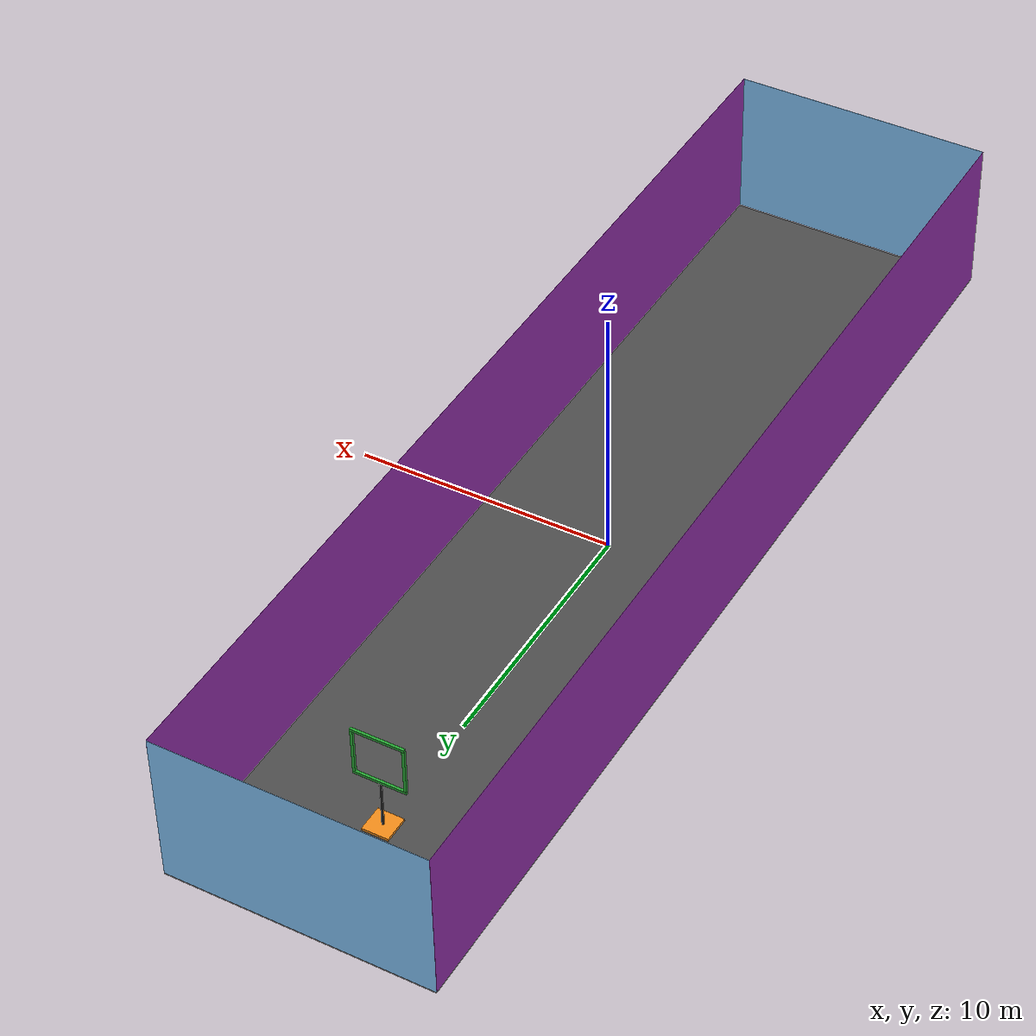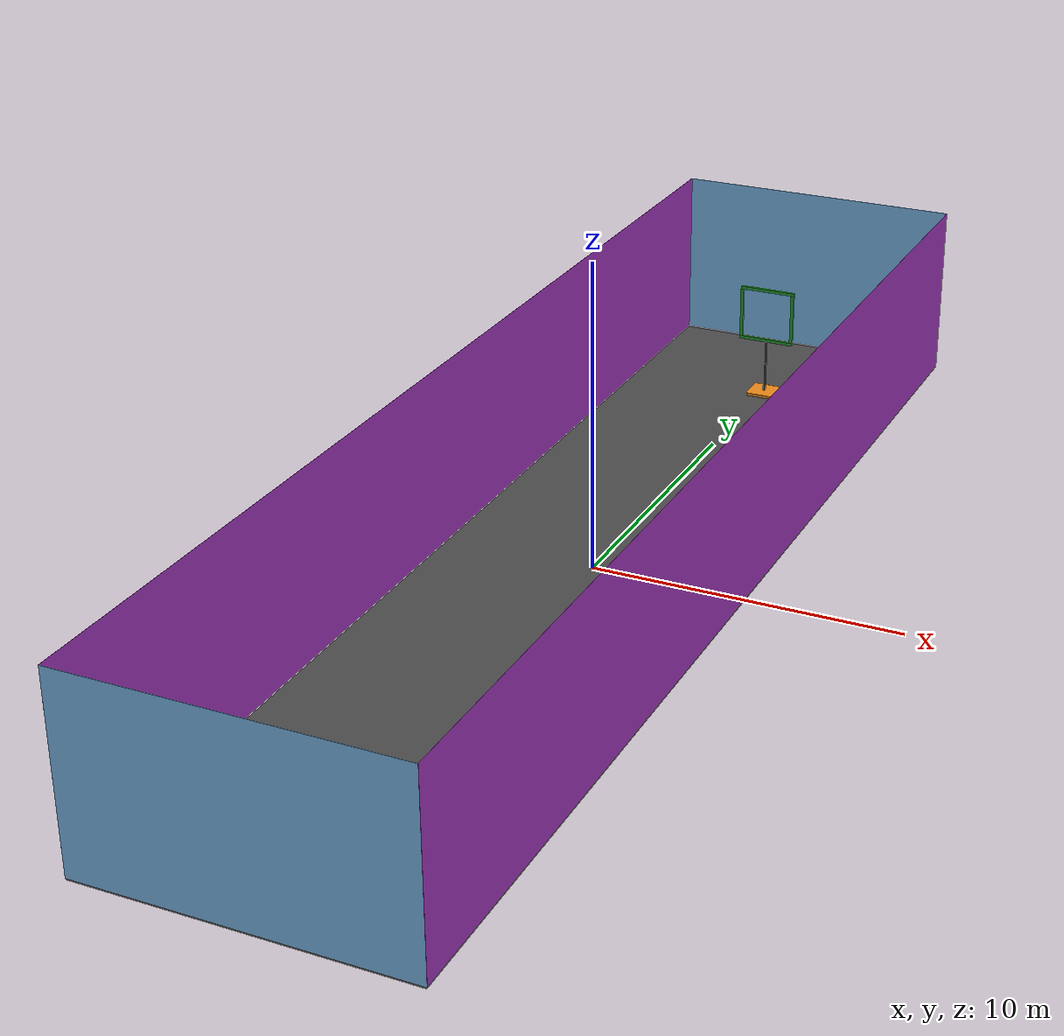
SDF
<?xml version="1.0" ?>
<sdf version="1.4">
  <world name="default">
    <include>
      <uri>model://sun</uri>
    </include>
    <include>
      <uri>model://square_gate</uri>
      <name>square_gate</name>
      <static>false</static>
      <pose>0 15 0 0 0 0</pose>
    </include>
    <model name='race_field'>
      <static>true</static>
      <link name='field'>
        <collision name='ground'>
          <geometry>
            <plane>
              <normal>0 0 1</normal>
              <size>10 40</size>
            </plane>
          </geometry>
        </collision>
        <collision name='wall0'>
          <pose>-5 0 3 0 1.5707963 0</pose>
          <geometry>
            <box>
              <size>6 40 0.001</size>
            </box>
          </geometry>
        </collision>
        <collision name='wall1'>
          <pose>0 20 3 1.5707963 1.5707963 0</pose>
          <geometry>
            <box>
              <size>6 10 0.001</size>
            </box>
          </geometry>
        </collision>
        <collision name='wall2'>
          <pose>5 0 3 0 1.5707963 0</pose>
          <geometry>
            <box>
              <size>6 40 0.001</size>
            </box>
          </geometry>
        </collision>
        <collision name='wall3'>
          <pose>0 -20 3 1.5707963 1.5707963 0</pose>
          <geometry>
            <box>
              <size>6 10 0.001</size>
            </box>
          </geometry>
        </collision>
        <visual name='ground'>
          <geometry>
            <plane>
              <normal>0 0 1</normal>
              <size>10 40</size>
            </plane>
          </geometry>
          <material>
            <script>
              <uri>file://media/materials/scripts/gazebo.material</uri>
              <name>Gazebo/DarkGrey</name>
            </script>
          </material>
        </visual>
        <visual name='wall0'>
          <pose>-5 0 3 0 1.5707963 0</pose>
          <geometry>
            <plane>
              <size>6 40</size>
            </plane>
          </geometry>
          <material>
            <script>
              <uri>file://media/materials/scripts/gazebo.material</uri>
              <name>Gazebo/Purple</name>
            </script>
          </material>
        </visual>
        <visual name='wall1'>
          <pose>0 20 3 1.5707963 1.5707963 0</pose>
          <geometry>
            <plane>
              <size>6 10</size>
            </plane>
          </geometry>
          <material>
            <script>
              <uri>file://media/materials/scripts/gazebo.material</uri>
              <name>Gazebo/SkyBlue</name>
            </script>
          </material>
        </visual>
        <visual name='wall2'>
          <pose>5 0 3 0 -1.5707963 0</pose>
          <geometry>
            <plane>
              <size>6 40</size>
            </plane>
          </geometry>
          <material>
            <script>
              <uri>file://media/materials/scripts/gazebo.material</uri>
              <name>Gazebo/Purple</name>
            </script>
          </material>
        </visual>
        <visual name='wall3'>
          <pose>0 -20 3 -1.5707963 1.5707963 0</pose>
          <geometry>
            <plane>
              <size>6 10</size>
            </plane>
          </geometry>
          <material>
            <script>
              <uri>file://media/materials/scripts/gazebo.material</uri>
              <name>Gazebo/SkyBlue</name>
            </script>
          </material>
        </visual>
      </link>
    </model>
    s
    <spherical_coordinates>
      <surface_model>EARTH_WGS84</surface_model>
      <latitude_deg>47.3667</latitude_deg>
      <longitude_deg>8.5500</longitude_deg>
      <elevation>500.0</elevation>
      <heading_deg>0</heading_deg>
    </spherical_coordinates>
    <physics type='ode'>
      <ode>
        <solver>
          <type>quick</type>
          <iters>1000</iters>
          <sor>1.3</sor>
        </solver>
        <constraints>
          <cfm>0</cfm>
          <erp>0.2</erp>
          <contact_max_correcting_vel>100</contact_max_correcting_vel>
          <contact_surface_layer>0.001</contact_surface_layer>
        </constraints>
      </ode>
      <max_step_size>0.005</max_step_size>
      <!-- real_time_factor = max_step_size * real_time_update_rate -->
      <real_time_factor>1</real_time_factor>
      <real_time_update_rate>200</real_time_update_rate>
      <gravity>0 0 -9.8</gravity>
    </physics>
  </world>
</sdf>

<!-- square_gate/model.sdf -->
<sdf version='1.6'>
  <model name='square_gate'>
    <pose>0 0 0 0 0 0</pose>
    <static>true</static>
    <link name="square_gate_link">
      <inertial>
        <mass>1.0</mass>
        <inertia> <!-- inertias are tricky to compute -->
          <!-- http://gazebosim.org/tutorials?tut=inertia&cat=build_robot -->
          <ixx>0.083</ixx>       <!-- for a box: ixx = 0.083 * mass * (y*y + z*z) -->
          <ixy>0.0</ixy>         <!-- for a box: ixy = 0 -->
          <ixz>0.0</ixz>         <!-- for a box: ixz = 0 -->
          <iyy>0.083</iyy>       <!-- for a box: iyy = 0.083 * mass * (x*x + z*z) -->
          <iyz>0.0</iyz>         <!-- for a box: iyz = 0 -->
          <izz>0.083</izz>       <!-- for a box: izz = 0.083 * mass * (x*x + y*y) -->
        </inertia>
      </inertial>
      <collision name="base">
        <pose>0 0 0.05 0 0 0</pose>
        <geometry>
          <box>
            <size>1 1 0.1</size>
          </box>
        </geometry>
      </collision>
      <collision name="bar">
        <pose>0 0 1.05 0 0 0</pose>
        <geometry>
          <cylinder>
            <radius>0.01</radius>
            <length>1.9</length>
          </cylinder>
        </geometry>
      </collision>
      <collision name="rod0">
        <pose>0 0 2.02 0 0 0</pose>
        <geometry>
          <box>
            <size>2 0.04 0.04</size>
          </box>
        </geometry>
      </collision>
      <collision name="rod1">
        <pose>0 0 3.98 0 0 0</pose>
        <geometry>
          <box>
            <size>2 0.04 0.04</size>
          </box>
        </geometry>
      </collision>
      <collision name="rod2">
        <pose>0.98 0 3 0 0 0</pose>
        <geometry>
          <box>
            <size>0.04 0.04 1.96</size>
          </box>
        </geometry>
      </collision>
      <collision name="rod3">
        <pose>-0.98 0 3 0 0 0</pose>
        <geometry>
          <box>
            <size>0.04 0.04 1.96</size>
          </box>
        </geometry>
      </collision>
      <visual name="base">
        <pose>0 0 0.05 0 0 0</pose>
        <geometry>
          <box>
            <size>1 1 0.1</size>
          </box>
        </geometry>
        <material>
          <script>
            <uri>file://media/materials/scripts/gazebo.material</uri>
            <name>Gazebo/Orange</name>
          </script>
        </material>
      </visual>
      <visual name="bar">
        <pose>0 0 1.05 0 0 0</pose>
        <geometry>
          <cylinder>
            <radius>0.05</radius>
            <length>1.9</length>
          </cylinder>
        </geometry>
        <material>
          <script>
            <uri>file://media/materials/scripts/gazebo.material</uri>
            <name>Gazebo/Black</name>
          </script>
        </material>
      </visual>
      <visual name="rod0">
        <pose>0 0 2.05 0 0 0</pose>
        <geometry>
          <box>
            <size>2 0.1 0.1</size>
          </box>
        </geometry>
        <material>
          <script>
            <uri>file://media/materials/scripts/gazebo.material</uri>
            <name>Gazebo/Green</name>
          </script>
        </material>
      </visual>
      <visual name="rod1">
        <pose>0 0 3.95 0 0 0</pose>
        <geometry>
          <box>
            <size>2 0.1 0.1</size>
          </box>
        </geometry>
        <material>
          <script>
            <uri>file://media/materials/scripts/gazebo.material</uri>
            <name>Gazebo/Green</name>
          </script>
        </material>
      </visual>
      <visual name="rod2">
        <pose>0.95 0 3 0 0 0</pose>
        <geometry>
          <box>
            <size>0.1 0.1 1.8</size>
          </box>
        </geometry>
        <material>
          <script>
            <uri>file://media/materials/scripts/gazebo.material</uri>
            <name>Gazebo/Green</name>
          </script>
        </material>
      </visual>
      <visual name="rod3">
        <pose>-0.95 0 3 0 0 0</pose>
        <geometry>
          <box>
            <size>0.1 0.1 1.8</size>
          </box>
        </geometry>
        <material>
          <script>
            <uri>file://media/materials/scripts/gazebo.material</uri>
            <name>Gazebo/Green</name>
          </script>
        </material>
      </visual>
    </link>
  </model>
</sdf>
